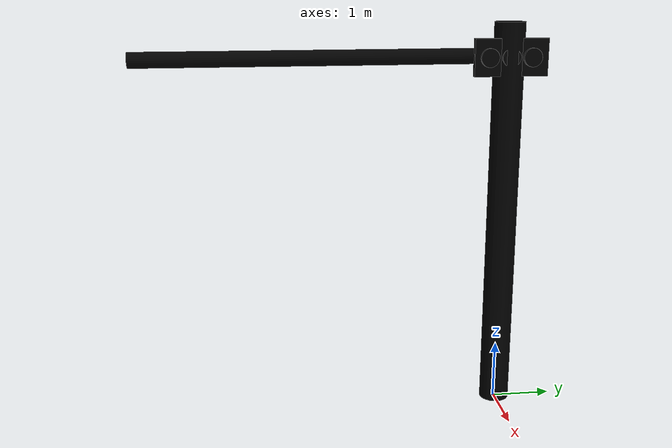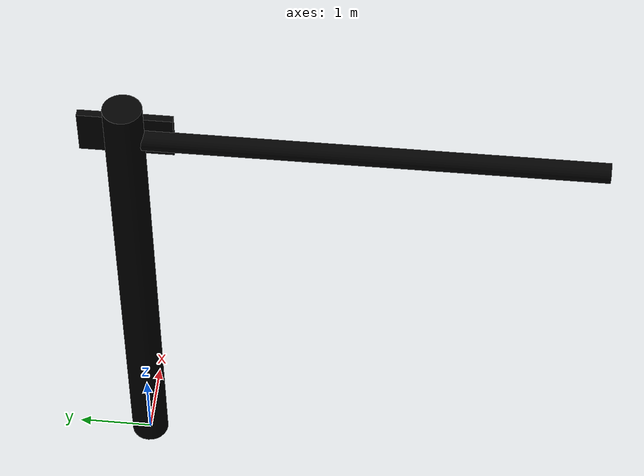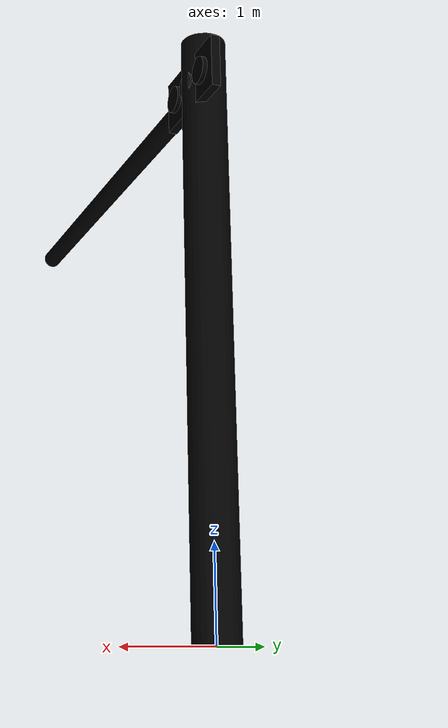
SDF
<?xml version="1.0"?>
<sdf version="1.7">
  <model name="cantilevered_light">
    <static>false</static>

    <link name="base">
      <gravity>false</gravity>
      <pose>0 0 0 0 0 0</pose>
      <visual name="visual">
        <pose>0 0 3.275 0 0 0</pose>
        <geometry>
          <cylinder>
            <radius>0.25</radius>
            <length>6.55</length>
          </cylinder>
        </geometry>
        <material>
          <ambient>0 0 0 1</ambient>
          <diffuse>0 0 0 1</diffuse>
          <specular>0 0 0 1</specular>
        </material>
      </visual>
      <collision name="collision">
        <pose>0 0 3.275 0 0 0</pose>
        <geometry>
          <cylinder>
            <radius>0.25</radius>
            <length>6.55</length>
          </cylinder>
        </geometry>
      </collision>
    </link>

    <link name="cross_beam">
      <gravity>false</gravity>
      <pose>0 0 6.015 1.5707 0 0</pose>
      <visual name="visual">
        <pose>0 0 3.0 0 0 0</pose>
        <geometry>
          <cylinder>
            <radius>0.125</radius>
            <length>6.0</length>
          </cylinder>
        </geometry>
        <material>
          <ambient>0 0 0 1</ambient>
          <diffuse>0 0 0 1</diffuse>
          <specular>0 0 0 1</specular>
        </material>
      </visual>
      <collision name="collision">
        <pose>0 0 3.0 0 0 0</pose>
        <geometry>
          <cylinder>
            <radius>0.125</radius>
            <length>6.0</length>
          </cylinder>
        </geometry>
      </collision>
    </link>

    <frame name="base_frame" attached_to="base">
    </frame>

    <frame name="cross_beam_frame">
      <pose relative_to="base_frame">0 0 6.015 1.5707 0 0</pose>
    </frame>

    <include>
      <name>traffic_light</name>
      <uri>model://gazebo_traffic_light</uri>
      <static>false</static>
      <pose relative_to="cross_beam_frame">0.13 -0.535 6.0 -1.5707 0 0</pose>
    </include>

    <joint name="cross_beam_fixed" type="fixed" >
      <parent>base</parent>
      <child>cross_beam</child>
    </joint>

    <joint name="light_mount" type="fixed" >
      <parent>cross_beam</parent>
      <child>traffic_light::light_fixture</child>
    </joint>
  </model>
</sdf>

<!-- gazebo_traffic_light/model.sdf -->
<sdf version="1.7">
  <model name="gazebo_traffic_light">
    <static>false</static>

    <link name="light_fixture">
      <gravity>false</gravity>
      <pose>0 0 0 0 0 0</pose>
      <visual name="visual">
        <pose>0 0 0.535 0 0 0</pose>
        <geometry>
          <box>
            <size>0.1 0.6 1.2</size>
          </box>
        </geometry>
        <material>
          <ambient>0 0 0 1</ambient>
          <diffuse>0 0 0 1</diffuse>
          <specular>0 0 0 1</specular>
        </material>
      </visual>
      <collision name="collision">
        <pose>0 0 0.535 0 0 0</pose>
        <geometry>
          <box>
            <size>0.1 0.6 1.2</size>
          </box>
        </geometry>
      </collision>
    </link>

    <link name="green_off">
      <gravity>false</gravity>
      <pose>0.075 0 0.175 0 1.5707 0</pose>
      <collision name="collision">
        <geometry>
          <cylinder>
            <radius>0.15</radius>
            <length>0.05</length>
          </cylinder>
        </geometry>
      </collision>

      <visual name="visual">
        <geometry>
          <cylinder>
            <radius>0.15</radius>
            <length>0.05</length>
          </cylinder>
        </geometry>
        <material>
          <ambient>0 1 0 1</ambient>
          <diffuse>0 0 0 1</diffuse>
          <specular>0 0 0 1</specular>
          <emissive>0 0 0 1</emissive>
        </material>
      </visual>
    </link>

    <link name="green_on">
      <gravity>false</gravity>
      <pose>0 0 0.175 0 1.5707 0</pose>
      <collision name="collision">
        <geometry>
          <cylinder>
            <radius>0.15</radius>
            <length>0.002</length>
          </cylinder>
        </geometry>
      </collision>

      <visual name="visual">
        <geometry>
          <cylinder>
            <radius>0.15</radius>
            <length>0.002</length>
          </cylinder>
        </geometry>
        <material>
          <ambient>0 0 0 1</ambient>
          <diffuse>0 0 0 1</diffuse>
          <specular>0 0 0 1</specular>
          <emissive>0 1 0 1</emissive>
        </material>
      </visual>
    </link>

    <link name="yellow_off">
      <gravity>false</gravity>
      <pose>0.075 0 0.525 0 1.5707 0</pose>
      <collision name="collision">
        <geometry>
          <cylinder>
            <radius>0.15</radius>
            <length>0.05</length>
          </cylinder>
        </geometry>
      </collision>

      <visual name="visual">
        <geometry>
          <cylinder>
            <radius>0.15</radius>
            <length>0.05</length>
          </cylinder>
        </geometry>
        <material>
          <ambient>1 1 0 1</ambient>
          <diffuse>0 0 0 1</diffuse>
          <specular>0 0 0 1</specular>
          <emissive>0 0 0 1</emissive>
        </material>
      </visual>
    </link>

    <link name="yellow_on">
      <gravity>false</gravity>
      <pose>0 0 0.525 0 1.5707 0</pose>
      <collision name="collision">
        <geometry>
          <cylinder>
            <radius>0.15</radius>
            <length>0.002</length>
          </cylinder>
        </geometry>
      </collision>

      <visual name="visual">
        <geometry>
          <cylinder>
            <radius>0.15</radius>
            <length>0.002</length>
          </cylinder>
        </geometry>
        <material>
          <ambient>0 0 0 1</ambient>
          <diffuse>0 0 0 1</diffuse>
          <specular>0 0 0 1</specular>
          <emissive>1 1 0 1</emissive>
        </material>
      </visual>
    </link>

    <link name="red_off">
      <gravity>false</gravity>
      <pose>0.075 0 0.875 0 1.5707 0</pose>
      <collision name="collision">
        <geometry>
          <cylinder>
            <radius>0.15</radius>
            <length>0.05</length>
          </cylinder>
        </geometry>
      </collision>

      <visual name="visual">
        <geometry>
          <cylinder>
            <radius>0.15</radius>
            <length>0.05</length>
          </cylinder>
        </geometry>
        <material>
          <ambient>1 0 0 1</ambient>
          <diffuse>0 0 0 1</diffuse>
          <specular>0 0 0 1</specular>
          <emissive>0 0 0 1</emissive>
        </material>
      </visual>
    </link>

    <link name="red_on">
      <gravity>false</gravity>
      <pose>0 0 0.875 0 1.5707 0</pose>
      <collision name="collision">
        <geometry>
          <cylinder>
            <radius>0.15</radius>
            <length>0.002</length>
          </cylinder>
        </geometry>
      </collision>

      <visual name="visual">
        <geometry>
          <cylinder>
            <radius>0.15</radius>
            <length>0.002</length>
          </cylinder>
        </geometry>
        <material>
          <ambient>0 0 0 1</ambient>
          <diffuse>0 0 0 1</diffuse>
          <specular>0 0 0 1</specular>
          <emissive>1 0 0 1</emissive>
        </material>
      </visual>
    </link>

    <joint name="green_switch" type="prismatic" >
      <parent>green_off</parent>
      <child>green_on</child>
      <axis>
        <xyz>0 0 1</xyz>
        <limit>
          <lower>0</lower>
          <upper>0.101</upper>
        </limit>
      </axis>
    </joint>

    <joint name="green_base" type="fixed" >
      <parent>light_fixture</parent>
      <child>green_off</child>
    </joint>

    <joint name="yellow_switch" type="prismatic" >
      <parent>yellow_off</parent>
      <child>yellow_on</child>
      <axis>
        <xyz>0 0 1</xyz>
        <limit>
          <lower>0</lower>
          <upper>0.101</upper>
        </limit>
      </axis>
    </joint>

    <joint name="yellow_base" type="fixed" >
      <parent>light_fixture</parent>
      <child>yellow_off</child>
    </joint>

    <joint name="red_switch" type="prismatic" >
      <parent>red_off</parent>
      <child>red_on</child>
      <axis>
        <xyz>0 0 1</xyz>
        <limit>
          <lower>0</lower>
          <upper>0.101</upper>
        </limit>
      </axis>
    </joint>

    <joint name="red_base" type="fixed" >
      <parent>light_fixture</parent>
      <child>red_off</child>
    </joint>
  </model>
</sdf>
